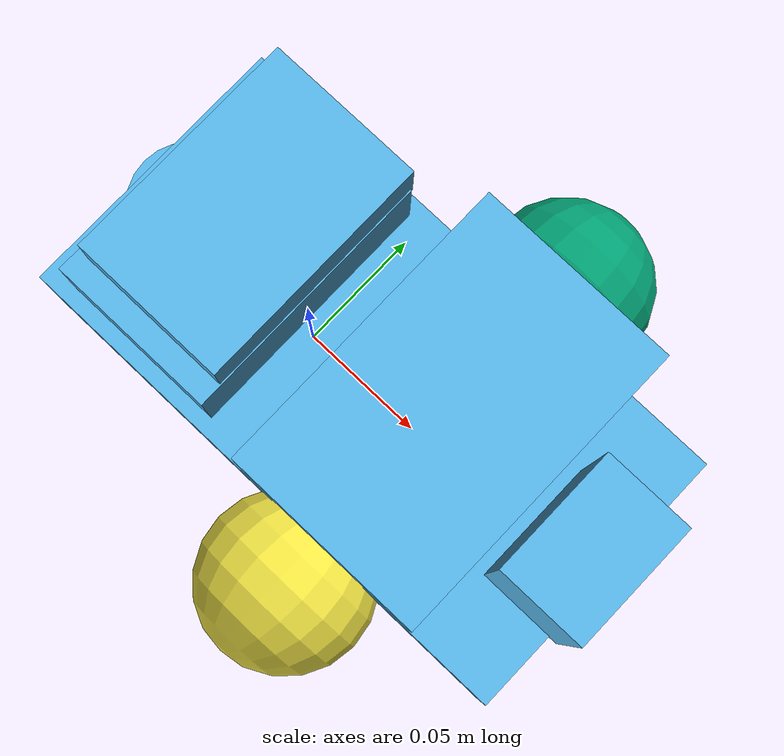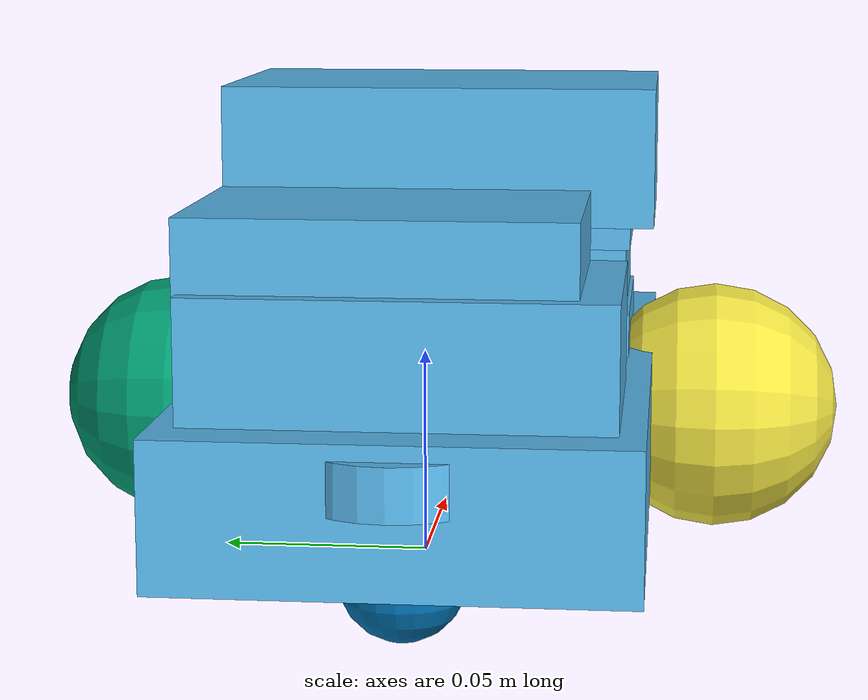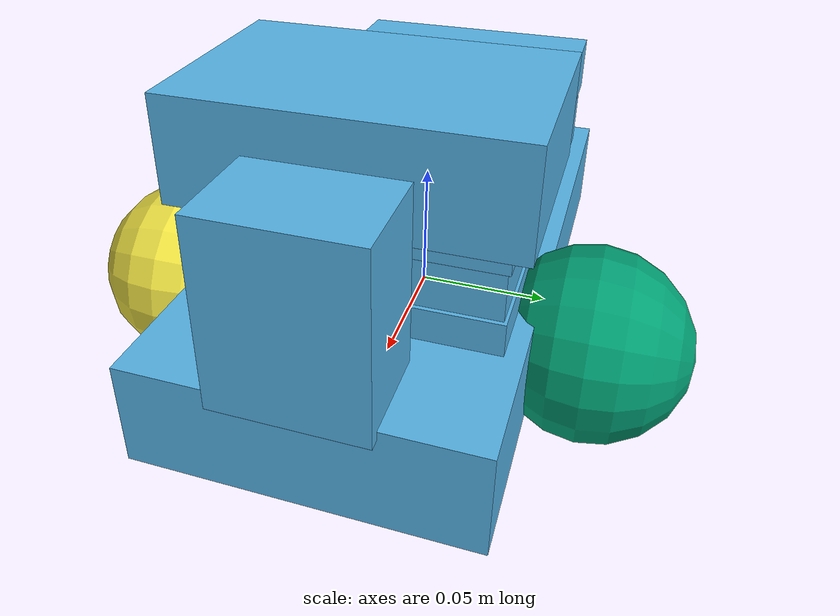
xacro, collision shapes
<?xml version="1.0" ?>
<robot xmlns:xacro="http://ros.org/wiki/xacro">

  <xacro:include filename="$(find d_hospital_description)/urdf/inertial_macros.xacro"/>

  <!-- Robot's base properties -->
  <xacro:property name="base_length" value="0.21"/>
  <xacro:property name="base_width" value="0.11"/>
  <xacro:property name="base_height" value="0.035"/>

  <!-- Robot's wheel properties -->
  <xacro:property name="wheel_radius" value="0.0325"/>
  <xacro:property name="wheel_height" value="0.025"/>
  <xacro:property name="wheel_mass" value="0.031"/>

  <!-- Distance between centre of wheel and robot base -->
  <xacro:property name="wheel_zoff" value="0.0125"/>

  <link name="base_footprint"/>

   <joint name="base_joint" type="fixed">
     <parent link="base_footprint"/>
     <child link="base_link"/>
     <origin xyz="-0.076 0 ${(wheel_radius + wheel_zoff / 2)}" rpy="0 0 0"/>
   </joint>

  <!-- Robot base chasis-->
  <link name="base_link">
      <visual>
        <origin xyz="${base_length/2} 0 ${-wheel_zoff}" rpy="0 0 ${pi}"/>
          <geometry>
              <mesh filename="file://$(find d_hospital_description)/meshes/robot_chassis.dae" />
          </geometry>
      </visual>
      <collision>
        <origin xyz="${base_length/2} 0 ${-wheel_zoff}" rpy="0 0 0"/>
        <geometry>
          <box size="${base_length} ${base_width} ${base_height}"/>
        </geometry>
      </collision>

    <!-- Caster mount -->
      <visual name="caster_mount_visual">
          <origin xyz="0.0185 0 -0.0475" rpy="0 0 0"/>
        <geometry>
          <mesh filename="file://$(find d_hospital_description)/meshes/caster_mount.dae" />
        </geometry>
      </visual>
      <collision name="caster_mount_collision">
        <origin xyz="0.0185 0 -0.005" rpy="0 0 0"/>
        <geometry>
          <cylinder radius="0.023" length="0.0125"/>
        </geometry>
      </collision>

      <!-- Rpi stand -->
      <visual name="rpi_4_stand_visual">
        <origin xyz="0.045 0.015 0.031" rpy="${pi} 0 ${-pi}"/>
          <geometry>
              <mesh filename="file://$(find d_hospital_description)/meshes/rpi_stand.dae" />
          </geometry>
      </visual>
      <collision name="rpi_4_stand_collision">
        <origin xyz="0.045 0 0.017" rpy="0 0 ${pi/2}"/>
        <geometry>
          <box size="0.098 0.065 0.034"/>
        </geometry>
      </collision>

      <!-- Raspberry Pi -->
      <visual name="rpi_4_visual">
        <origin xyz="0.046 0.00245 0.033" rpy="0 0 ${pi/2}"/>
        <geometry>
          <mesh filename="file://$(find d_hospital_description)/meshes/rpi_4.dae"/>
        </geometry>
      </visual>
      <collision name="rpi_4_collision">
        <origin xyz="0.047 0.005 0.041" rpy="0 0 ${pi/2}"/>
        <geometry>
          <box size="0.09 0.06 0.02"/>
        </geometry>
      </collision>

      <!-- Power bank stand -->
      <visual name="power_bank_stand_visual">
        <origin xyz="0.138 0.015 0.031" rpy="${pi} 0 ${pi}"/>
        <geometry>
          <mesh filename="file://$(find d_hospital_description)/meshes/power_bank_stand.dae"/>
        </geometry>
      </visual>
      <collision name="power_bank_stand_collision">
        <origin xyz="0.138 0 0.0085" rpy="0 0 ${pi/2}"/>
        <geometry>
          <box size="0.098 0.065 0.015"/>
        </geometry>
      </collision>

      <!-- Power bank -->
      <visual name="power_bank_visual">
        <origin xyz="0.1685 0.04775 0.015" rpy="0 0 ${pi/2}"/>
        <geometry>
          <mesh filename="file://$(find d_hospital_description)/meshes/power_bank.dae"/>
        </geometry>
      </visual>
      <collision name="power_bank_collision">
        <origin xyz="0.138 0 0.025" rpy="0 0 ${pi/2}"/>
        <geometry>
          <box size="0.096 0.062 0.02"/>
        </geometry>
      </collision>

      <!-- Rplidar stand -->
      <visual name="rplidar_stand_visual">
        <origin xyz="0.138 0.015 0.017" rpy="0 0 ${-2*pi}"/>
        <geometry>
          <mesh filename="file://$(find d_hospital_description)/meshes/rplidar_stand.dae"/>
        </geometry>
      </visual>
      <collision name="rplidar_stand_collision">
        <origin xyz="0.138 0 0.04" rpy="0 0 ${pi/2}"/>
        <geometry>
          <box size="0.098 0.065 0.015"/>
        </geometry>
      </collision>

      <!-- Rplidar base -->
      <visual name="rplidar_base_visual">
        <origin xyz="0.13985 0.0087 0.037" rpy="0 0 ${-pi/2}"/>
          <geometry>
            <mesh filename="file://$(find d_hospital_description)/meshes/rplidar_base.dae"/>
          </geometry>
        </visual>
      <collision name="rplidar_base_collision">
        <origin xyz="0.138 0 0.056" rpy="0 0 ${-pi/2}"/>
        <geometry>
          <box size="0.11 0.072 0.035"/>
        </geometry>
      </collision>

      <!-- Camera mount -->
      <visual name="camera_mount_visual">
        <origin xyz="0.16 0.0335 0.001" rpy="0 0 ${pi}"/>
          <geometry>
            <mesh filename="file://$(find d_hospital_description)/meshes/rpi_camera_mount.dae"/>
          </geometry>
      </visual>
      <collision name="camera_mount_collision">
        <origin xyz="0.197 0.0 0.032" rpy="${pi/2} 0 ${pi/2}"/>
        <geometry>
          <box size="0.048 0.06 0.033"/>
        </geometry>
      </collision>

    <xacro:box_inertia mass="0.864" length="${base_length}" width="${base_width}" height="${base_height}">
      <origin xyz="0.105 0 0.0175" rpy="0 0 0"/>
    </xacro:box_inertia>
  </link>

  <!-- Left wheel -->
  <link name="left_wheel">
    <visual>
        <geometry>
          <mesh filename="file://$(find d_hospital_description)/meshes/right_wheel.dae" />
        </geometry>
    </visual>
    <collision>
      <origin xyz="0 0 -0.0065" rpy="0 0 0"/>
      <geometry>
        <sphere radius="${wheel_radius}"/>
      </geometry>
    </collision>

    <xacro:cylinder_inertia mass="${wheel_mass}" length="${wheel_height}" radius="${wheel_radius}">
      <origin xyz="0 0 0" rpy="0 0 0"/>
    </xacro:cylinder_inertia>
  </link>

  <joint name="left_wheel_joint" type="continuous">
    <parent link="base_link"/>
    <child link="left_wheel"/>
    <origin xyz="0.133 0.065 -${wheel_zoff}" rpy="-${pi/2} 0 ${pi}"/>
    <axis xyz="0 0 -1"/>
    <limit effort="1.0" velocity="20.0"/>
  </joint>

  <!-- Right wheel -->
  <link name="right_wheel">
    <visual>
      <geometry>
        <mesh filename="file://$(find d_hospital_description)/meshes/right_wheel.dae"/>
      </geometry>
    </visual>
    <collision>
      <origin xyz="0 0 -0.0065" rpy="0 0 0"/>
      <geometry>
        <sphere radius="${wheel_radius}"/>
      </geometry>
    </collision>

    <xacro:cylinder_inertia mass="${wheel_mass}" length="${wheel_height}" radius="${wheel_radius}">
      <origin xyz="0 0 0" rpy="0 0 0"/>
    </xacro:cylinder_inertia>
  </link>

  <joint name="right_wheel_joint" type="continuous">
    <parent link="base_link"/>
    <child link="right_wheel"/>
    <origin xyz="0.133 -0.065 -${wheel_zoff}" rpy="${pi/2} 0 ${-pi}"/>
    <axis xyz="0 0 1"/>
    <limit effort="1.0" velocity="20.0"/>
  </joint>

  <!-- Caster wheel -->
  <link name="caster_wheel">
    <visual>
      <geometry>
        <mesh filename="file://$(find d_hospital_description)/meshes/caster_wheel.dae"/>
      </geometry>
    </visual>
    <collision>
      <origin xyz="0 0 -0.001" rpy="0 0 ${pi/2}"/>
      <geometry>
        <sphere radius="0.015"/>
      </geometry>
    </collision>

    <xacro:sphere_inertia mass="0.033" radius="0.025">
      <origin xyz="0 0 0" rpy="0 0 0"/>
    </xacro:sphere_inertia>
  </link>

  <joint name="caster_wheel_joint" type="fixed">
    <parent link="base_link"/>
    <child link="caster_wheel"/>
    <origin xyz="0.028 0 -0.031" rpy="0 0 ${pi/2}"/>
  </joint>

  <gazebo reference="caster_wheel">
    <mu1 value="0.001"/>
    <mu2 value="0.001"/>
  </gazebo>

  <gazebo reference="left_wheel">
    <mu1 value="1.16"/>
    <mu2 value="1.16"/>
  </gazebo>

  <gazebo reference="right_wheel">
    <mu1 value="1.16"/>
    <mu2 value="1.16"/>
  </gazebo>

</robot>

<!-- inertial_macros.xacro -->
<robot xmlns:xacro="http://ros.org/wiki/xacro">

    <!-- Some standard inertial calculations, obtained from: https://en.wikipedia.org/wiki/List_of_moments_of_inertia -->
    <xacro:macro name="box_inertia" params="mass length width height *origin">
        <inertial>
            <xacro:insert_block name="origin"/>
            <mass value="${mass}"/>
            <inertia ixx="${(mass/12) * (width*width + height*height)}" ixy="0.0" ixz="0.0"
                    iyy="${(mass/12) * (length*length + height*height)}" iyz="0.0"
                    izz="${(mass/12) * (length*length + width*width)}"/>
        </inertial>
    </xacro:macro>

    <xacro:macro name="sphere_inertia" params="mass radius *origin">
        <inertial>
            <xacro:insert_block name="origin"/>
            <mass value="${mass}"/>
            <inertia ixx="${(2/5) * mass * (radius*radius)}" ixy="0.0" ixz="0.0"
                    iyy="${(2/5) * mass * (radius*radius)}" iyz="0.0"
                    izz="${(2/5) * mass * (radius*radius)}"/>
        </inertial>
    </xacro:macro>

    <xacro:macro name="cylinder_inertia" params="mass length radius *origin">
        <inertial>
            <xacro:insert_block name="origin"/>
            <mass value="${mass}" />
            <inertia ixx="${(1/12) * mass * (3*radius*radius + length*length)}" ixy="0.0" ixz="0.0"
                    iyy="${(1/12) * mass * (3*radius*radius + length*length)}" iyz="0.0"
                    izz="${(1/2) * mass * (radius*radius)}" />
        </inertial>
    </xacro:macro>

</robot>
